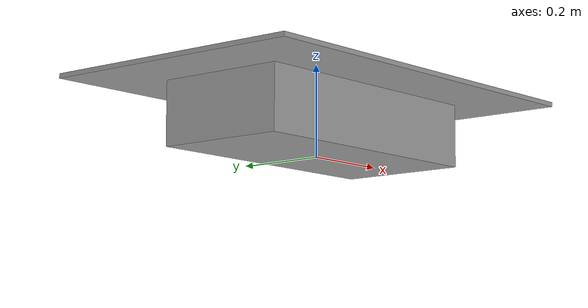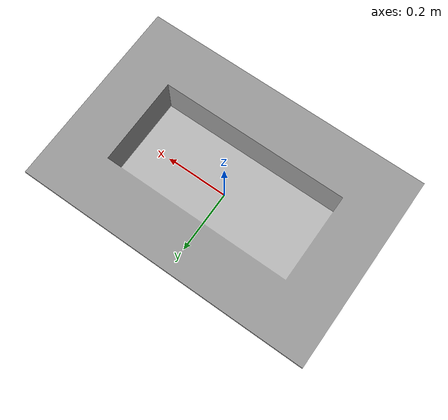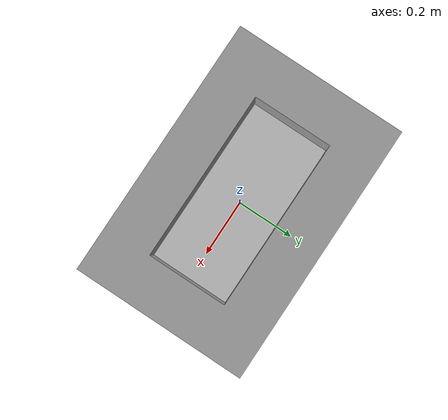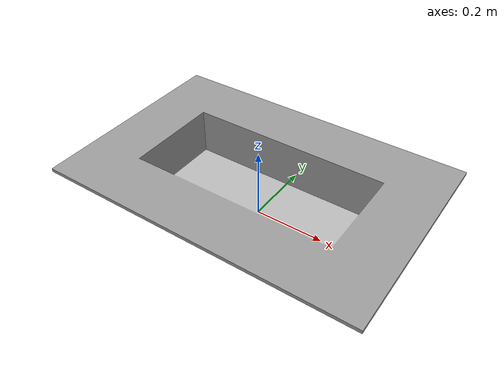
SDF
<?xml version="1.0" ?>
<sdf version="1.5">
  <model name="whirlpool_bin_abydos_2">
    <static>true</static>
    <link name="base_link">

      <collision name="collision">
        <pose>0 0 0 0 0 0</pose>
        <geometry>
          <mesh>
            <uri>model://whirlpool_bin_abydos_2/meshes/whirlpool_bin_abydos_2.dae</uri>
          </mesh>
        </geometry>
      </collision>

      <visual name="visual">
        <cast_shadows>true</cast_shadows>
        <pose>0 0 0 0 0 0</pose>
        <geometry>
          <mesh>
            <uri>model://whirlpool_bin_abydos_2/meshes/whirlpool_bin_abydos_2.dae</uri>
          </mesh>
        </geometry>
      </visual>
    </link>
  </model>
</sdf>
